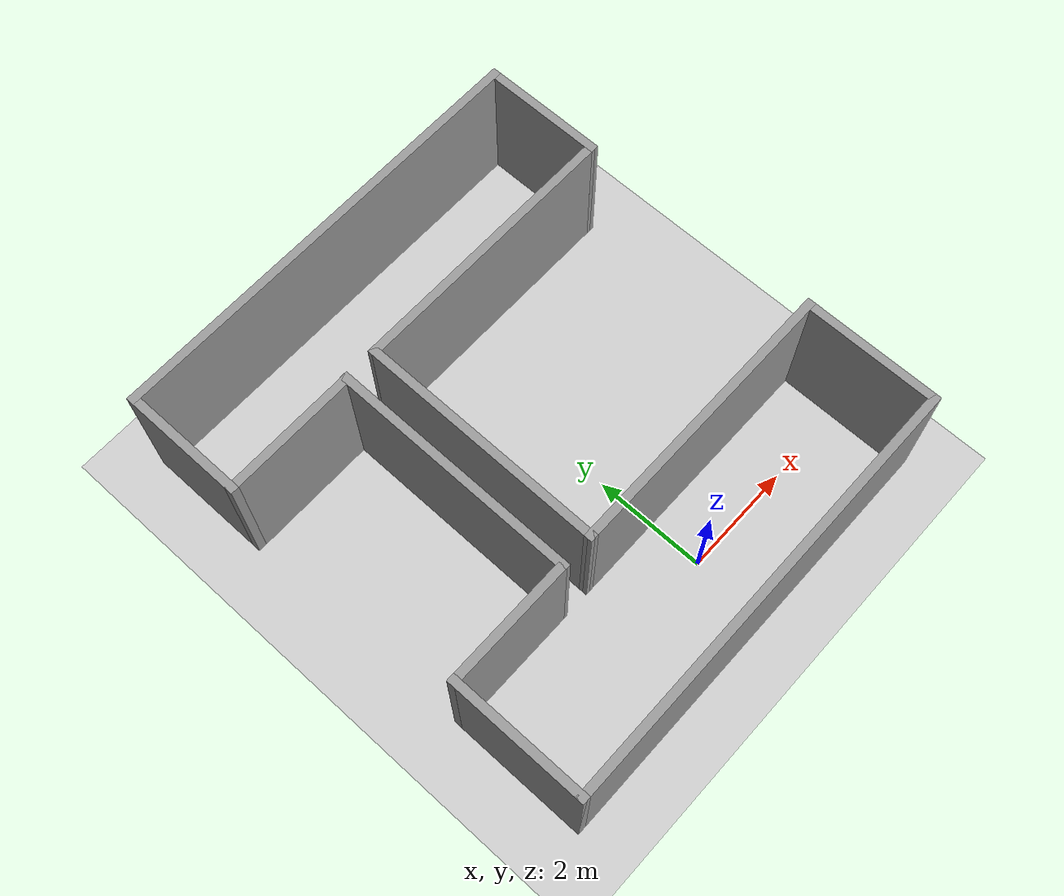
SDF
<sdf version="1.7">
 <world name="default">
  <light name="sun" type="directional">
   <pose>0 0 10 0 -0 0</pose>
   <diffuse>0.8 0.8 0.8 1</diffuse>
   <specular>0.2 0.2 0.2 1</specular>
   <attenuation>
    <range>1000</range>
    <constant>0.9</constant>
    <linear>0.01</linear>
    <quadratic>0.001</quadratic>
   </attenuation>
   <direction>-0.5 0.1 -0.9</direction>
   <spot><inner_angle>0</inner_angle><outer_angle>0</outer_angle><falloff>0</falloff></spot>
  </light>
  <model name="ground_plane">
   <static>1</static>
   <link name="link">
    <collision name="collision">
     <geometry><plane><normal>0 0 1</normal><size>100 100</size></plane></geometry>
     <surface><friction><ode><mu>100</mu><mu2>50</mu2></ode></friction></surface>
    </collision>
    <visual name="visual">
     <cast_shadows>0</cast_shadows>
     <geometry><plane><normal>0 0 1</normal><size>100 100</size></plane></geometry>
     <material>
      <script><uri>file://media/materials/scripts/gazebo.material</uri><name>Gazebo/Grey</name></script>
     </material>
    </visual>
   </link>
  </model>
  <gravity>0 0 -9.8</gravity>
  <magnetic_field>6e-06 2.3e-05 -4.2e-05</magnetic_field>
  <atmosphere type="adiabatic"/>
  <physics type="ode">
   <max_step_size>0.001</max_step_size>
   <real_time_factor>1</real_time_factor>
   <real_time_update_rate>1000</real_time_update_rate>
  </physics>
  <scene><ambient>0.4 0.4 0.4 1</ambient><background>0.7 0.7 0.7 1</background><shadows>1</shadows></scene>
  <audio><device>default</device></audio>
  <spherical_coordinates>
   <surface_model>EARTH_WGS84</surface_model>
   <latitude_deg>0</latitude_deg>
   <longitude_deg>0</longitude_deg>
   <elevation>0</elevation>
   <heading_deg>0</heading_deg>
  </spherical_coordinates>
  <model name="narrow_corridor">
   <pose>-0.448927 3.07532 0 0 -0 0</pose>
   <link name="Wall_0">
    <collision name="Wall_0_Collision">
     <geometry><box><size>2.5 0.15 2.5</size></box></geometry>
     <pose>0 0 1.25 0 -0 0</pose>
    </collision>
    <visual name="Wall_0_Visual">
     <pose>0 0 1.25 0 -0 0</pose>
     <geometry><box><size>2.5 0.15 2.5</size></box></geometry>
     <material>
      <script><uri>file://media/materials/scripts/gazebo.material</uri><name>Gazebo/Grey</name></script>
      <ambient>1 1 1 1</ambient>
     </material>
     <meta><layer>0</layer></meta>
    </visual>
    <pose>-3.879 -3.21 0 0 -0 -1.5708</pose>
   </link>
   <link name="Wall_1">
    <collision name="Wall_1_Collision">
     <geometry><box><size>8 0.15 2.5</size></box></geometry>
     <pose>0 0 1.25 0 -0 0</pose>
    </collision>
    <visual name="Wall_1_Visual">
     <pose>0 0 1.25 0 -0 0</pose>
     <geometry><box><size>8 0.15 2.5</size></box></geometry>
     <material>
      <script><uri>file://media/materials/scripts/gazebo.material</uri><name>Gazebo/Grey</name></script>
      <ambient>1 1 1 1</ambient>
     </material>
     <meta><layer>0</layer></meta>
    </visual>
    <pose>0.046 -4.385 0 0 -0 0</pose>
   </link>
   <link name="Wall_10">
    <collision name="Wall_10_Collision">
     <geometry><box><size>4.48005 0.15 2.5</size></box></geometry>
     <pose>0 0 1.25 0 -0 0</pose>
    </collision>
    <visual name="Wall_10_Visual">
     <pose>0 0 1.25 0 -0 0</pose>
     <geometry><box><size>4.48005 0.15 2.5</size></box></geometry>
     <material>
      <script><uri>file://media/materials/scripts/gazebo.material</uri><name>Gazebo/Grey</name></script>
      <ambient>1 1 1 1</ambient>
     </material>
     <meta><layer>0</layer></meta>
    </visual>
    <pose>-1.031 0.13 0 0 -0 -1.57542</pose>
   </link>
   <link name="Wall_11">
    <collision name="Wall_11_Collision">
     <geometry><box><size>5.162 0.15 2.5</size></box></geometry>
     <pose>0 0 1.25 0 -0 0</pose>
    </collision>
    <visual name="Wall_11_Visual">
     <pose>0 0 1.25 0 -0 0</pose>
     <geometry><box><size>5.162 0.15 2.5</size></box></geometry>
     <material>
      <script><uri>file://media/materials/scripts/gazebo.material</uri><name>Gazebo/Grey</name></script>
      <ambient>1 1 1 1</ambient>
     </material>
     <meta><layer>0</layer></meta>
    </visual>
    <pose>1.465 -2.035 0 0 -0 0</pose>
   </link>
   <link name="Wall_13">
    <collision name="Wall_13_Collision">
     <geometry><box><size>2.5 0.15 2.5</size></box></geometry>
     <pose>0 0 1.25 0 -0 0</pose>
    </collision>
    <visual name="Wall_13_Visual">
     <pose>0 0 1.25 0 -0 0</pose>
     <geometry><box><size>2.5 0.15 2.5</size></box></geometry>
     <material>
      <script><uri>file://media/materials/scripts/gazebo.material</uri><name>Gazebo/Grey</name></script>
      <ambient>1 1 1 1</ambient>
     </material>
     <meta><layer>0</layer></meta>
    </visual>
    <pose>-2.796 2.285 0 0 -0 3.14159</pose>
   </link>
   <link name="Wall_14">
    <collision name="Wall_14_Collision">
     <geometry><box><size>2.25 0.15 2.5</size></box></geometry>
     <pose>0 0 1.25 0 -0 0</pose>
    </collision>
    <visual name="Wall_14_Visual">
     <pose>0 0 1.25 0 -0 0</pose>
     <geometry><box><size>2.25 0.15 2.5</size></box></geometry>
     <material>
      <script><uri>file://media/materials/scripts/gazebo.material</uri><name>Gazebo/Grey</name></script>
      <ambient>1 1 1 1</ambient>
     </material>
     <meta><layer>0</layer></meta>
    </visual>
    <pose>-3.971 3.335 0 0 -0 1.5708</pose>
   </link>
   <link name="Wall_15">
    <collision name="Wall_15_Collision">
     <geometry><box><size>8 0.15 2.5</size></box></geometry>
     <pose>0 0 1.25 0 -0 0</pose>
    </collision>
    <visual name="Wall_15_Visual">
     <pose>0 0 1.25 0 -0 0</pose>
     <geometry><box><size>8 0.15 2.5</size></box></geometry>
     <material>
      <script><uri>file://media/materials/scripts/gazebo.material</uri><name>Gazebo/Grey</name></script>
      <ambient>1 1 1 1</ambient>
     </material>
     <meta><layer>0</layer></meta>
    </visual>
    <pose>-0.046 4.385 0 0 -0 0</pose>
   </link>
   <link name="Wall_16">
    <collision name="Wall_16_Collision">
     <geometry><box><size>2.25 0.15 2.5</size></box></geometry>
     <pose>0 0 1.25 0 -0 0</pose>
    </collision>
    <visual name="Wall_16_Visual">
     <pose>0 0 1.25 0 -0 0</pose>
     <geometry><box><size>2.25 0.15 2.5</size></box></geometry>
     <material>
      <script><uri>file://media/materials/scripts/gazebo.material</uri><name>Gazebo/Grey</name></script>
      <ambient>1 1 1 1</ambient>
     </material>
     <meta><layer>0</layer></meta>
    </visual>
    <pose>3.879 3.335 0 0 -0 -1.5708</pose>
   </link>
   <link name="Wall_17">
    <collision name="Wall_17_Collision">
     <geometry><box><size>5.05001 0.15 2.5</size></box></geometry>
     <pose>0 0 1.25 0 -0 0</pose>
    </collision>
    <visual name="Wall_17_Visual">
     <pose>0 0 1.25 0 -0 0</pose>
     <geometry><box><size>5.05001 0.15 2.5</size></box></geometry>
     <material>
      <script><uri>file://media/materials/scripts/gazebo.material</uri><name>Gazebo/Grey</name></script>
      <ambient>1 1 1 1</ambient>
     </material>
     <meta><layer>0</layer></meta>
    </visual>
    <pose>1.429 2.29 0 0 -0 3.13955</pose>
   </link>
   <link name="Wall_2">
    <collision name="Wall_2_Collision">
     <geometry><box><size>2.5 0.15 2.5</size></box></geometry>
     <pose>0 0 1.25 0 -0 0</pose>
    </collision>
    <visual name="Wall_2_Visual">
     <pose>0 0 1.25 0 -0 0</pose>
     <geometry><box><size>2.5 0.15 2.5</size></box></geometry>
     <material>
      <script><uri>file://media/materials/scripts/gazebo.material</uri><name>Gazebo/Grey</name></script>
      <ambient>1 1 1 1</ambient>
     </material>
     <meta><layer>0</layer></meta>
    </visual>
    <pose>3.971 -3.21 0 0 -0 1.5708</pose>
   </link>
   <link name="Wall_5">
    <collision name="Wall_5_Collision">
     <geometry><box><size>2.388 0.15 2.5</size></box></geometry>
     <pose>0 0 1.25 0 -0 0</pose>
    </collision>
    <visual name="Wall_5_Visual">
     <pose>0 0 1.25 0 -0 0</pose>
     <geometry><box><size>2.388 0.15 2.5</size></box></geometry>
     <material>
      <script><uri>file://media/materials/scripts/gazebo.material</uri><name>Gazebo/Grey</name></script>
      <ambient>1 1 1 1</ambient>
     </material>
     <meta><layer>0</layer></meta>
    </visual>
    <pose>-2.76 -2.035 0 0 -0 0</pose>
   </link>
   <link name="Wall_6">
    <collision name="Wall_6_Collision">
     <geometry><box><size>4.48005 0.15 2.5</size></box></geometry>
     <pose>0 0 1.25 0 -0 0</pose>
    </collision>
    <visual name="Wall_6_Visual">
     <pose>0 0 1.25 0 -0 0</pose>
     <geometry><box><size>4.48005 0.15 2.5</size></box></geometry>
     <material>
      <script><uri>file://media/materials/scripts/gazebo.material</uri><name>Gazebo/Grey</name></script>
      <ambient>1 1 1 1</ambient>
     </material>
     <meta><layer>0</layer></meta>
    </visual>
    <pose>-1.631 0.13 0 0 -0 1.56618</pose>
   </link>
   <static>1</static>
  </model>
 </world>
</sdf>
